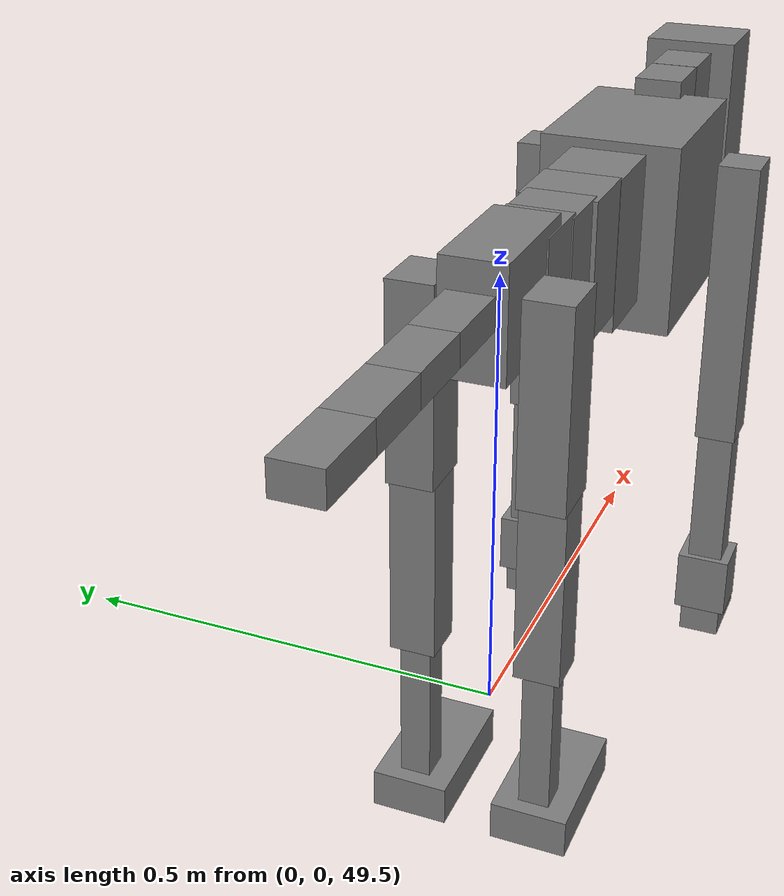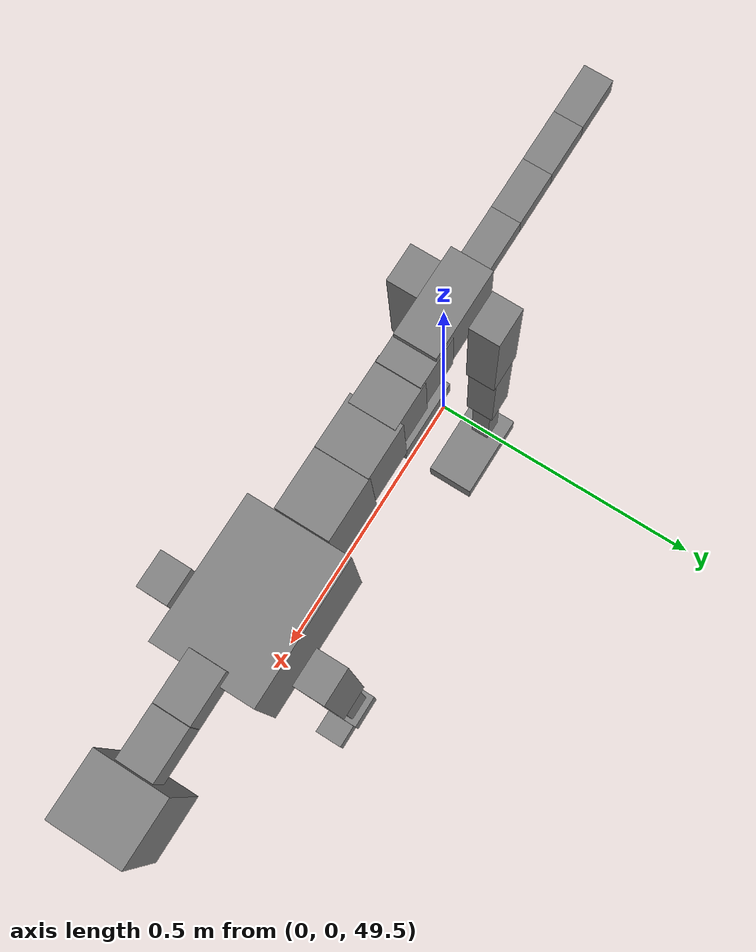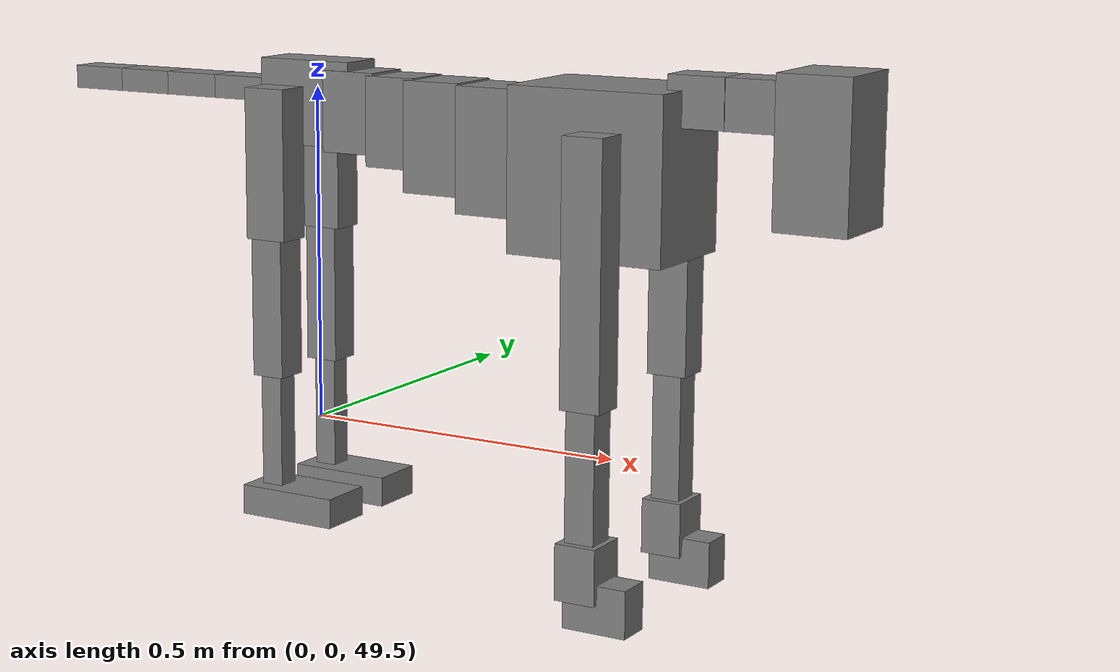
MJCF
<mujoco model="dog">

    <default>
        <joint armature="0.02" stiffness="1" damping="0.2" limited="true"/>
        <geom condim="3" friction="1 0.05 0.05" margin="0.01"/>
        <motor ctrllimited="true" ctrlrange="-1.0 1.0" forcelimited="true" gear="50"/>
    </default>

    <compiler inertiafromgeom="true" angle="radian"/>

    <option timestep="0.016" iterations="50" tolerance="1e-10" solver="Newton" jacobian="dense" cone="pyramidal"/>

    <size nconmax="20000" njmax="60000" nstack="5000000"/>
    <visual>
        <map force="0.1" zfar="30"/>
        <rgba haze="0.15 0.25 0.35 1"/>
        <quality shadowsize="2048"/>
        <global offwidth="800" offheight="800"/>
    </visual>

    <asset>
        <texture type="skybox" builtin="gradient" rgb1="0.3 0.5 0.7" rgb2="0 0 0" width="512" height="512"/>
        <texture name="texplane" type="2d" builtin="checker" rgb1=".2 .3 .4" rgb2=".1 0.15 0.2" width="512" height="512"
                 mark="cross" markrgb=".8 .8 .8"/>
        <texture name="texgeom" type="cube" builtin="flat" mark="cross" width="127" height="1278" rgb1="0.8 0.6 0.4"
                 rgb2="0.8 0.6 0.4" markrgb="1 1 1" random="0.01"/>

        <material name="matplane" reflectance="0.3" texture="texplane" texrepeat="1 1" texuniform="true"/>
        <material name="matgeom" texture="texgeom" texuniform="true" rgba="0.8 0.6 .4 1"/>
    </asset>

    <worldbody>
        <geom name="floor" pos="0 0 0" size="0 0 .25" type="plane" material="matplane" condim="3"/>

        <light directional="false" diffuse=".2 .2 .2" specular="0 0 0" pos="0 0 5" dir="0 0 -1" castshadow="false"/>
        <light mode="targetbodycom" target="torso" directional="false" diffuse=".8 .8 .8" specular="0.3 0.3 0.3"
               pos="0 0 4.0" dir="0 0 -1"/>

        <body name="root" pos="0 0 50">
            <freejoint name="root_1"/>
            <geom type="box" pos="0 0 -0.02" size="0.0774  0.0358  0.063" density="2030"/>

            <body name="spine1" pos="0.054 0 0">
                <joint name="spine1_y" axis="0 1 0" range="0 0.7" limited="true"/>
                <geom type="box" pos="0.02375 0 -0.03" size="0.04375  0.0375  0.05985" density="2030"/>

                <body name="spine2" pos="0.0612 0 0">
                    <joint name="spine2_y" axis="0 1 0" range="-0.15 0.15" limited="true"/>
                    <geom type="box" pos="0.03555  0  -0.04" size="0.04055  0.039  0.06615" density="2030"/>

                    <body name="spine3" pos="0.0730 0 0">
                        <joint name="spine3_y" axis="0 1 0" range="-0.15 0.15" limited="true"/>
                        <geom type="box" pos="0.03555  0  -0.057" size="0.04555  0.0445  0.081" density="2030"/>

                        <body name="spine4" pos="0.0780 0 0">
                            <joint name="spine4_y" axis="0 1 0" range="-0.15 0.15" limited="true"/>
                            <geom type="box" pos="0.05265  0  -0.07" size="0.05265  0.045  0.09135" density="2030"/>

                            <body name="torso" pos="0.1082 0 0">
                                <joint name="torso_y" axis="0 1 0" range="-0.15 0.15" limited="true"/>
                                <geom type="box" pos="0.11925  0  -0.085" size="0.11925  0.085  0.11745"
                                      density="2030"/>

                                <body name="neck1" pos="0.2160  0   0.0180">
                                    <joint name="neck1_y" axis="0 1 0" range="-1.2  -1" limited="true"/>
                                    <geom type="box" pos="0.0423  0  0" size="0.0423  0.03  0.036" density="2325"/>

                                    <body name="neck2" pos="0.0853  0  0">
                                        <joint name="neck2_y" axis="0 1 0" range="0.1  0" limited="true"/>
                                        <geom type="box" pos="0.0423  0  0" size="0.0423  0.03  0.036" density="2325"/>

                                        <body name="head" pos="0.0853  0  0">
                                            <joint name="head_y" axis="0 1 0" range="-0.3  -0.2" limited="true"/>
                                            <geom type="box" pos="0.0531  0  -0.055" size="0.0531  0.06  0.1044"
                                                  density="4030"/>

                                        </body>
                                    </body>
                                </body>

                                <body name="front_shoulder" pos="0.156  0   -0.0480">
                                    <joint name="front_shoulder_y" axis="0 1 0" range="-1 1.5" limited="true"/>
                                    <geom type="box" pos="0 0.13 -0.1598" size="0.0305  0.0261  0.1865" density="1158"/>
                                    <geom type="box" pos="0 -0.13 -0.1598" size="0.0305  0.0261  0.1865"
                                          density="1158"/>

                                    <body name="front_elbow" pos="0  0  -0.3197">
                                        <joint name="front_elbow_y" axis="0 1 0" range="-2 0" limited="true"/>
                                        <geom type="box" pos="0 0.13 -0.1126" size="0.0222  0.0227  0.1126"
                                              density="1081"/>
                                        <geom type="box" pos="0 -0.13 -0.1126" size="0.0222  0.0227  0.1126"
                                              density="1081"/>

                                        <body name="front_wrist" pos="0  0  -0.2252">
                                            <joint name="front_wrist_y" axis="0 1 0" range="-0.2 0" limited="true"/>
                                            <geom type="box" pos="0 0.13 -0.0272" size="0.0308  0.0342  0.0404"
                                                  density="1664"/>
                                            <geom type="box" pos="0 -0.13 -0.0272" size="0.0308  0.0342  0.0404"
                                                  density="1664"/>

                                            <body name="front_finger_end" pos="0  0  -0.0544">
                                                <joint name="front_finger_y" axis="0 1 0" range="-0.4 1"
                                                       limited="true"/>
                                                <geom type="box" pos="0.0263  0.13  -0.0194"
                                                      size="0.0483  0.0263  0.0344" density="1515"/>
                                                <geom type="box" pos="0.0263  -0.13  -0.0194"
                                                      size="0.0483  0.0263  0.0344" density="1515"/>

                                            </body>

                                        </body>
                                    </body>
                                </body>

                            </body>
                        </body>
                    </body>
                </body>
            </body>

            <body name="back_hip" pos="-0.03 0 -0.018">
                <joint name="back_hip_y" axis="0 1 0" range="-1.5 0.3" limited="true"/>
                <geom type="box" pos="0 0.07 -0.0892" size="0.0335  0.0262  0.1120" density="1154"/>
                <geom type="box" pos="0 -0.07 -0.0892" size="0.0335  0.0262  0.1120" density="1154"/>

                <body name="back_knee" pos="0  0  -0.1784">
                    <joint name="back_knee_y" axis="0 1 0" range="0 2.8" limited="true"/>
                    <geom type="box" pos="0 0.07 -0.1067" size="0.0259  0.0255  0.1222" density="1227"/>
                    <geom type="box" pos="0 -0.07 -0.1067" size="0.0259  0.0255  0.1222" density="1227"/>

                    <body name="back_ankle" pos="0  0  -0.2133">
                        <joint name="back_ankle_y" axis="0 1 0" range="-2.2 0" limited="true"/>
                        <geom type="box" pos="0 0.07 -0.0991" size="0.0173  0.0173  0.1103" density="1284"/>
                        <geom type="box" pos="0 -0.07 -0.0991" size="0.0173  0.0173  0.1103" density="1284"/>

                        <body name="back_toe_end" pos="0  0  -0.1981">
                            <joint name="back_toe_y" axis="0 1 0" range="-0.4 1" limited="true"/>
                            <geom type="box" pos="0.0429  0.07  -0.0073" size="0.0787  0.0429  0.0223" density="1515"/>
                            <geom type="box" pos="0.0429  -0.07  -0.0073" size="0.0787  0.0429  0.0223" density="1515"/>

                        </body>
                    </body>
                </body>
            </body>

            <body name="tail1" pos="-0.074 0 -0.006">
                <joint name="tail1_y" axis="0 1 0" range="-0.2 0.2" limited="true"/>
                <geom type="box" pos="-0.0536  0  0" size="0.045  0.025  0.0175" density="1587"/>

                <body name="tail2" pos="-0.09 0 0">
                    <joint name="tail2_y" axis="0 1 0" range="-0.2 0.2" limited="true"/>
                    <geom type="box" pos="-0.0536  0  0" size="0.045  0.025  0.0175" density="1587"/>

                    <body name="tail3" pos="-0.09 0 0">
                        <joint name="tail3_y" axis="0 1 0" range="-0.2 0.2" limited="true"/>
                        <geom type="box" pos="-0.0536  0  0" size="0.045  0.025  0.0175" density="1587"/>

                        <body name="tail4" pos="-0.09 0 0">
                            <joint name="tail4_y" axis="0 1 0" range="-0.2 0.2" limited="true"/>
                            <geom type="box" pos="-0.0536  0  0" size="0.045  0.025  0.0175" density="1587"/>

                        </body>
                    </body>
                </body>
            </body>
        </body>
    </worldbody>

    <actuator>
        <motor joint="spine1_y" forcerange="-150 150     "/>
        <motor joint="spine2_y" forcerange="-150 150     "/>
        <motor joint="spine3_y" forcerange="-150 150     "/>
        <motor joint="spine4_y" forcerange="-150 150     "/>
        <motor joint="torso_y" forcerange="-150 150     "/>
        <motor joint="neck1_y" forcerange="-100 100       "/>
        <motor joint="neck2_y" forcerange="-100 100       "/>
        <motor joint="head_y" forcerange="-150 150       "/>
        <motor joint="front_shoulder_y" forcerange="-100.04 173.80"/>
        <motor joint="front_elbow_y" forcerange="-110.93 153.95"/>
        <motor joint="front_wrist_y" forcerange="-135.32 138.15"/>
        <motor joint="front_finger_y" forcerange="-63.83 36.65"/>
        <motor joint="back_hip_y" forcerange="-283.59 266.24"/>
        <motor joint="back_knee_y" forcerange="-235.79 335.47"/>
        <motor joint="back_angle_y" forcerange="-103.41 73.88"/>
        <motor joint="back_toe_y" forcerange="-130.14 133.11"/>
        <motor joint="tail1_y" forcerange="-50 50     "/>
        <motor joint="tail2_y" forcerange="-50 50     "/>
        <motor joint="tail3_y" forcerange="-50 50     "/>
        <motor joint="tail4_y" forcerange="-50 50     "/>
    </actuator>
</mujoco>
